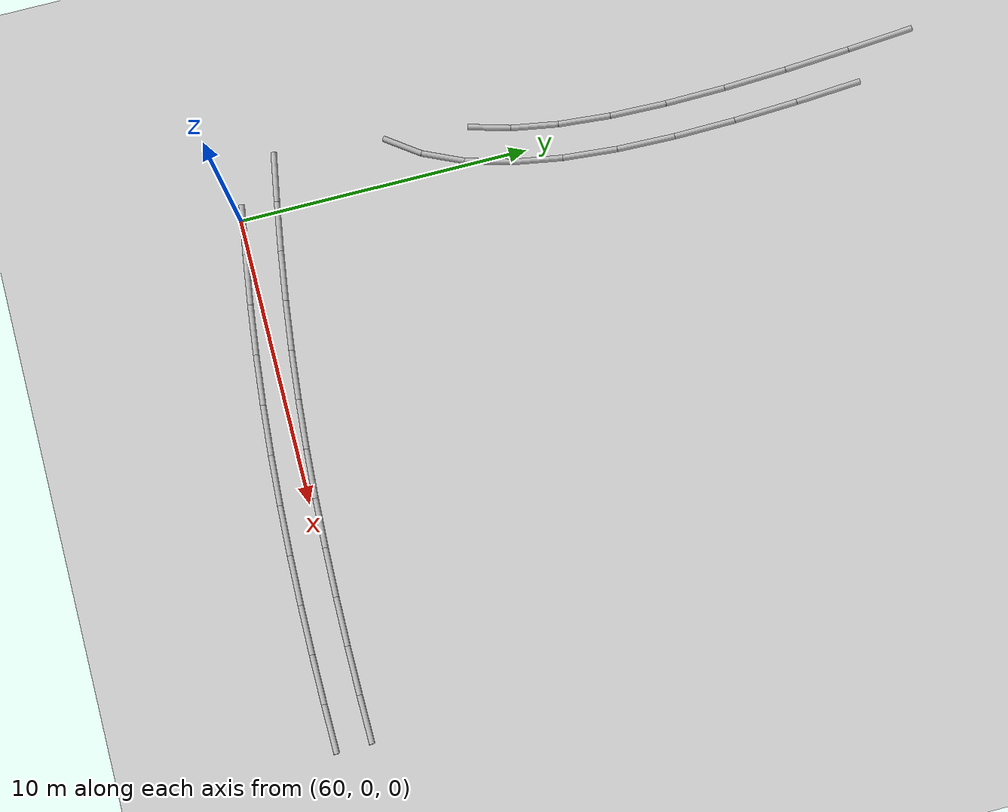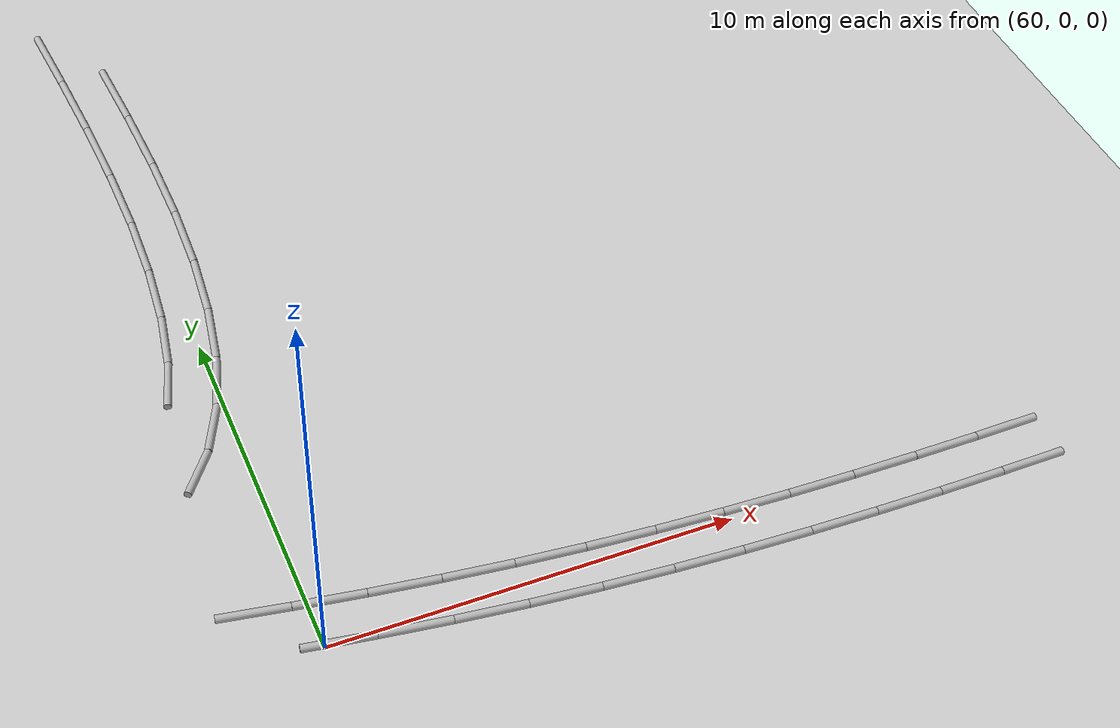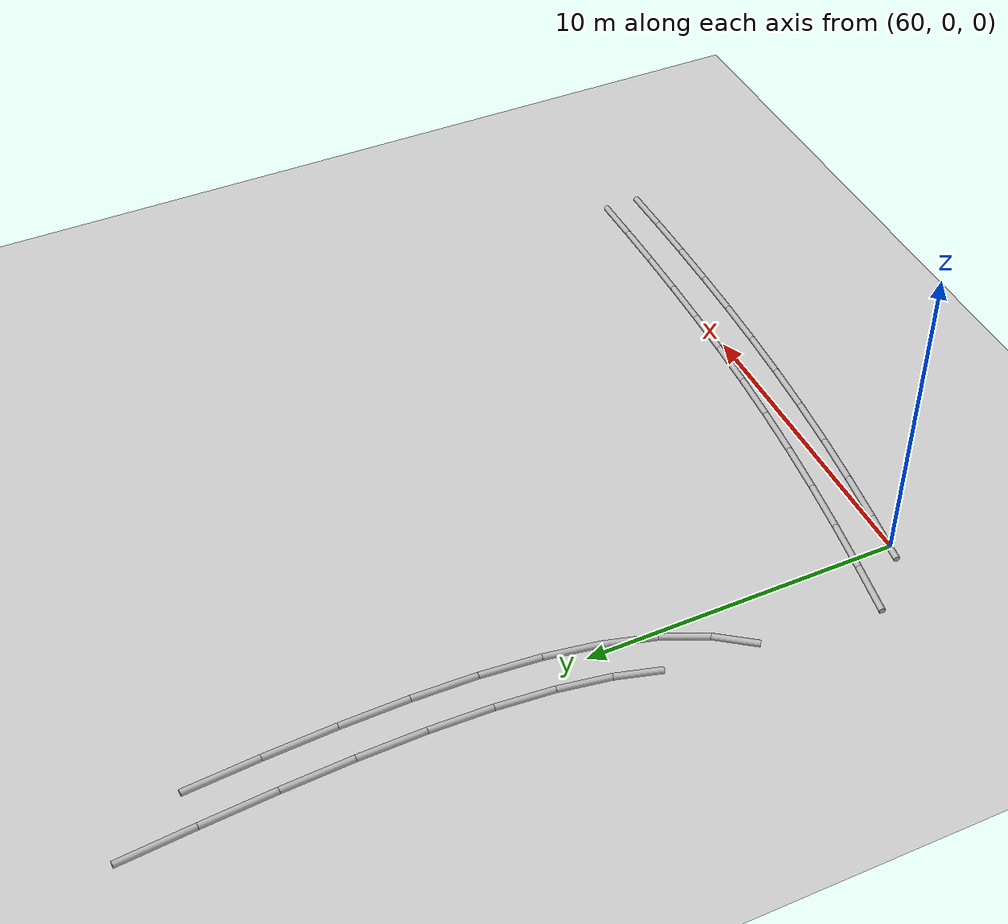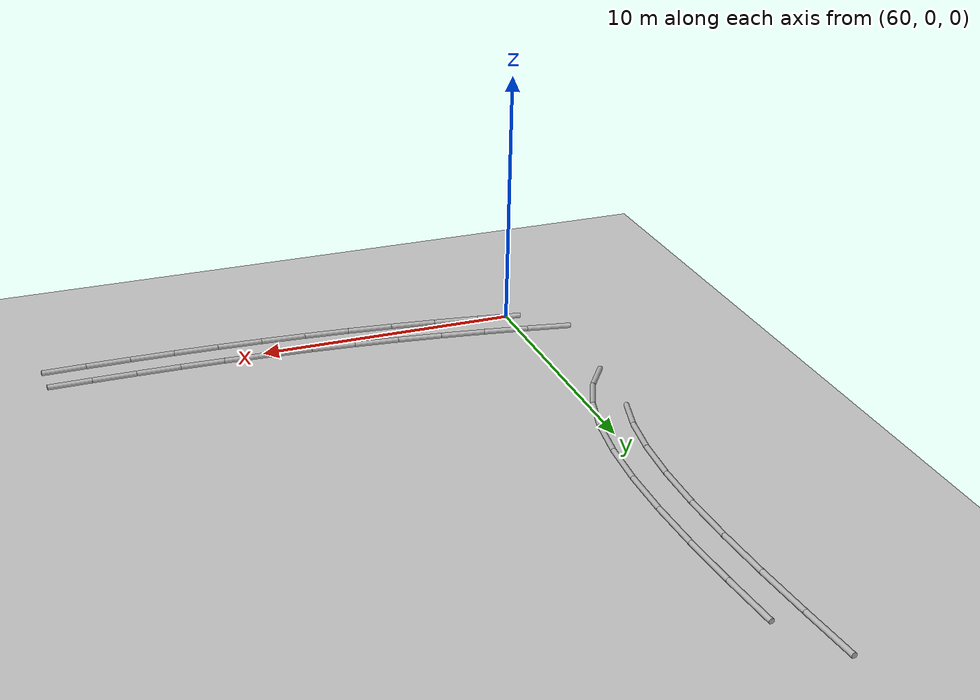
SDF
<sdf version="1.6">
 <world name="default">
  <model name="ground_plane">
   <static>true</static>
   <link name="link">
    <collision name="collision">
     <geometry><plane><normal>0 0 1</normal><size>5000 5000</size></plane></geometry>
     <surface>
      <friction>
       <ode><mu>50</mu></ode>
       <bullet><friction>1</friction><rolling_friction>0.1</rolling_friction></bullet>
      </friction>
     </surface>
    </collision>
    <visual name="visual">
     <geometry><plane><normal>0 0 1</normal><size>5000 5000</size></plane></geometry>
     <material>
      <ambient>0.8 0.8 0.8 1</ambient>
      <diffuse>0.8 0.8 0.8 1</diffuse>
      <specular>0.8 0.8 0.8 1</specular>
     </material>
    </visual>
    <inertial>
     <mass>1</mass>
     <inertia><ixx>1</ixx><ixy>0</ixy><ixz>0</ixz><iyy>1</iyy><iyz>0</iyz><izz>1</izz></inertia>
    </inertial>
   </link>
  </model>
  <model name="line_model">
   <static>true</static>
   <link name="cylinder_(59.4558746709025, 0.14785376078527576)_(61.18607336949037, -0.12121524587791974)">
    <pose>60.32097402019644 0.013319257453678013 0.05 0 1.5707963267948966 -0.15427757338818857</pose>
    <visual name="visual">
     <geometry><cylinder><radius>0.1</radius><length>1.7509956216227034</length></cylinder></geometry>
    </visual>
    <collision name="collision">
     <geometry><cylinder><radius>0.1</radius><length>1.7509956216227034</length></cylinder></geometry>
    </collision>
   </link>
   <link name="cylinder_(61.18607336949037, -0.12121524587791974)_(62.917348751878514, -0.36062326544347895)">
    <pose>62.05171106068444 -0.24091925566069933 0.05 0 1.5707963267948966 -0.137412723112346</pose>
    <visual name="visual">
     <geometry><cylinder><radius>0.1</radius><length>1.7477501679289025</length></cylinder></geometry>
    </visual>
    <collision name="collision">
     <geometry><cylinder><radius>0.1</radius><length>1.7477501679289025</length></cylinder></geometry>
    </collision>
   </link>
   <link name="cylinder_(62.917348751878514, -0.36062326544347895)_(64.6488298625912, -0.5660817327848389)">
    <pose>63.78308930723486 -0.4633524991141589 0.05 0 1.5707963267948966 -0.11810826268228325</pose>
    <visual name="visual">
     <geometry><cylinder><radius>0.1</radius><length>1.743628406099504</length></cylinder></geometry>
    </visual>
    <collision name="collision">
     <geometry><cylinder><radius>0.1</radius><length>1.743628406099504</length></cylinder></geometry>
    </collision>
   </link>
   <link name="cylinder_(64.6488298625912, -0.5660817327848389)_(66.37872384263247, -0.7339099857343313)">
    <pose>65.51377685261184 -0.6499958592595851 0.05 0 1.5707963267948966 -0.096713824203417</pose>
    <visual name="visual">
     <geometry><cylinder><radius>0.1</radius><length>1.7380159678987699</length></cylinder></geometry>
    </visual>
    <collision name="collision">
     <geometry><cylinder><radius>0.1</radius><length>1.7380159678987699</length></cylinder></geometry>
    </collision>
   </link>
   <link name="cylinder_(66.37872384263247, -0.7339099857343313)_(68.10414912517712, -0.8650764845923788)">
    <pose>67.24143648390479 -0.799493235163355 0.05 0 1.5707963267948966 -0.07587387399805764</pose>
    <visual name="visual">
     <geometry><cylinder><radius>0.1</radius><length>1.7304037263213918</length></cylinder></geometry>
    </visual>
    <collision name="collision">
     <geometry><cylinder><radius>0.1</radius><length>1.7304037263213918</length></cylinder></geometry>
    </collision>
   </link>
   <link name="cylinder_(68.10414912517712, -0.8650764845923788)_(69.82364428107424, -0.9626404442867024)">
    <pose>68.96389670312567 -0.9138584644395407 0.05 0 1.5707963267948966 -0.05667911393857689</pose>
    <visual name="visual">
     <geometry><cylinder><radius>0.1</radius><length>1.722260815725917</length></cylinder></geometry>
    </visual>
    <collision name="collision">
     <geometry><cylinder><radius>0.1</radius><length>1.722260815725917</length></cylinder></geometry>
    </collision>
   </link>
   <link name="cylinder_(69.82364428107424, -0.9626404442867024)_(71.53578515310383, -1.0296655577872333)">
    <pose>70.67971471708904 -0.9961530010369679 0.05 0 1.5707963267948966 -0.03912698290406215</pose>
    <visual name="visual">
     <geometry><cylinder><radius>0.1</radius><length>1.7134522845746287</length></cylinder></geometry>
    </visual>
    <collision name="collision">
     <geometry><cylinder><radius>0.1</radius><length>1.7134522845746287</length></cylinder></geometry>
    </collision>
   </link>
   <link name="cylinder_(71.53578515310383, -1.0296655577872333)_(73.23914906971584, -1.0692105656309485)">
    <pose>72.38746711140983 -1.049438061709091 0.05 0 1.5707963267948966 -0.02321166085968011</pose>
    <visual name="visual">
     <geometry><cylinder><radius>0.1</radius><length>1.7038228898747516</length></cylinder></geometry>
    </visual>
    <collision name="collision">
     <geometry><cylinder><radius>0.1</radius><length>1.7038228898747516</length></cylinder></geometry>
    </collision>
   </link>
   <link name="cylinder_(73.23914906971584, -1.0692105656309485)_(74.93231355480104, -1.0843292897933388)">
    <pose>74.08573131225845 -1.0767699277121436 0.05 0 1.5707963267948966 -0.00892903347550474</pose>
    <visual name="visual">
     <geometry><cylinder><radius>0.1</radius><length>1.6932319833307385</length></cylinder></geometry>
    </visual>
    <collision name="collision">
     <geometry><cylinder><radius>0.1</radius><length>1.6932319833307385</length></cylinder></geometry>
    </collision>
   </link>
   <link name="cylinder_(74.93231355480104, -1.0843292897933388)_(76.61385514079241, -1.078070735007637)">
    <pose>75.77308434779673 -1.081200012400488 0.05 0 1.5707963267948966 0.0037218977745712067</pose>
    <visual name="visual">
     <geometry><cylinder><radius>0.1</radius><length>1.6815532328553777</length></cylinder></geometry>
    </visual>
    <collision name="collision">
     <geometry><cylinder><radius>0.1</radius><length>1.6815532328553777</length></cylinder></geometry>
    </collision>
   </link>
   <link name="cylinder_(76.61385514079241, -1.078070735007637)_(78.28234827015892, -1.0534792192528566)">
    <pose>77.44810170547566 -1.0657749771302467 0.05 0 1.5707963267948966 0.014737690479147645</pose>
    <visual name="visual">
     <geometry><cylinder><radius>0.1</radius><length>1.6686743437202982</length></cylinder></geometry>
    </visual>
    <collision name="collision">
     <geometry><cylinder><radius>0.1</radius><length>1.6686743437202982</length></cylinder></geometry>
    </collision>
   </link>
   <link name="cylinder_(59.09466042212523, 23.903551695813437)_(59.28353773261314, 21.580530880459627)">
    <pose>59.189099077369185 22.742041288136534 0.05 0 1.5707963267948966 -1.48966802052077</pose>
    <visual name="visual">
     <geometry><cylinder><radius>0.1</radius><length>2.3306866685559067</length></cylinder></geometry>
    </visual>
    <collision name="collision">
     <geometry><cylinder><radius>0.1</radius><length>2.3306866685559067</length></cylinder></geometry>
    </collision>
   </link>
   <link name="cylinder_(59.28353773261314, 21.580530880459627)_(59.4432447249706, 19.301996181051596)">
    <pose>59.36339122879187 20.441263530755613 0.05 0 1.5707963267948966 -1.500818801336308</pose>
    <visual name="visual">
     <geometry><cylinder><radius>0.1</radius><length>2.2841249308683422</length></cylinder></geometry>
    </visual>
    <collision name="collision">
     <geometry><cylinder><radius>0.1</radius><length>2.2841249308683422</length></cylinder></geometry>
    </collision>
   </link>
   <link name="cylinder_(59.4432447249706, 19.301996181051596)_(59.548644525308916, 17.108503522713693)">
    <pose>59.49594462513976 18.205249851882645 0.05 0 1.5707963267948966 -1.5227821278218052</pose>
    <visual name="visual">
     <geometry><cylinder><radius>0.1</radius><length>2.1960234880559986</length></cylinder></geometry>
    </visual>
    <collision name="collision">
     <geometry><cylinder><radius>0.1</radius><length>2.1960234880559986</length></cylinder></geometry>
    </collision>
   </link>
   <link name="cylinder_(59.548644525308916, 17.108503522713693)_(59.582657306257076, 15.024302526809247)">
    <pose>59.565650915782996 16.06640302476147 0.05 0 1.5707963267948966 -1.5544784370806242</pose>
    <visual name="visual">
     <geometry><cylinder><radius>0.1</radius><length>2.0844785104665657</length></cylinder></geometry>
    </visual>
    <collision name="collision">
     <geometry><cylinder><radius>0.1</radius><length>2.0844785104665657</length></cylinder></geometry>
    </collision>
   </link>
   <link name="cylinder_(59.582657306257076, 15.024302526809247)_(59.5293341763339, 13.073169398239372)">
    <pose>59.55599574129549 14.04873596252431 0.05 0 1.5707963267948966 -1.598118839830791</pose>
    <visual name="visual">
     <geometry><cylinder><radius>0.1</radius><length>1.951861634847018</length></cylinder></geometry>
    </visual>
    <collision name="collision">
     <geometry><cylinder><radius>0.1</radius><length>1.951861634847018</length></cylinder></geometry>
    </collision>
   </link>
   <link name="cylinder_(59.5293341763339, 13.073169398239372)_(59.37349944024506, 11.279682886447496)">
    <pose>59.45141680828948 12.176426142343434 0.05 0 1.5707963267948966 -1.657467919334233</pose>
    <visual name="visual">
     <geometry><cylinder><radius>0.1</radius><length>1.80024396484234</length></cylinder></geometry>
    </visual>
    <collision name="collision">
     <geometry><cylinder><radius>0.1</radius><length>1.80024396484234</length></cylinder></geometry>
    </collision>
   </link>
   <link name="cylinder_(59.37349944024506, 11.279682886447496)_(59.10150235394358, 9.66936378566929)">
    <pose>59.23750089709432 10.474523336058393 0.05 0 1.5707963267948966 -1.7381257546896183</pose>
    <visual name="visual">
     <geometry><cylinder><radius>0.1</radius><length>1.633128905288136</length></cylinder></geometry>
    </visual>
    <collision name="collision">
     <geometry><cylinder><radius>0.1</radius><length>1.633128905288136</length></cylinder></geometry>
    </collision>
   </link>
   <link name="cylinder_(59.10150235394358, 9.66936378566929)_(58.70257410059047, 8.26828628424899)">
    <pose>58.90203822726703 8.96882503495914 0.05 0 1.5707963267948966 -1.8481853904811099</pose>
    <visual name="visual">
     <geometry><cylinder><radius>0.1</radius><length>1.4567641937903044</length></cylinder></geometry>
    </visual>
    <collision name="collision">
     <geometry><cylinder><radius>0.1</radius><length>1.4567641937903044</length></cylinder></geometry>
    </collision>
   </link>
   <link name="cylinder_(57.93680675877189, 1.6239350068469)_(59.649317722062996, 1.3321593741966609)">
    <pose>58.79306224041744 1.4780471905217805 0.05 0 1.5707963267948966 -0.16875833383506253</pose>
    <visual name="visual">
     <geometry><cylinder><radius>0.1</radius><length>1.7371893446601292</length></cylinder></geometry>
    </visual>
    <collision name="collision">
     <geometry><cylinder><radius>0.1</radius><length>1.7371893446601292</length></cylinder></geometry>
    </collision>
   </link>
   <link name="cylinder_(59.649317722062996, 1.3321593741966609)_(61.36094187157964, 1.0659751377493447)">
    <pose>60.50512979682132 1.1990672559730027 0.05 0 1.5707963267948966 -0.15427975262923488</pose>
    <visual name="visual">
     <geometry><cylinder><radius>0.1</radius><length>1.7321983942209447</length></cylinder></geometry>
    </visual>
    <collision name="collision">
     <geometry><cylinder><radius>0.1</radius><length>1.7321983942209447</length></cylinder></geometry>
    </collision>
   </link>
   <link name="cylinder_(61.36094187157964, 1.0659751377493447)_(63.07072960419036, 0.8295339990153364)">
    <pose>62.215835737885 0.9477545683823405 0.05 0 1.5707963267948966 -0.13741531796170678</pose>
    <visual name="visual">
     <geometry><cylinder><radius>0.1</radius><length>1.7260586614225906</length></cylinder></geometry>
    </visual>
    <collision name="collision">
     <geometry><cylinder><radius>0.1</radius><length>1.7260586614225906</length></cylinder></geometry>
    </collision>
   </link>
   <link name="cylinder_(63.07072960419036, 0.8295339990153364)_(64.77772900791695, 0.626975269346364)">
    <pose>63.924229306053654 0.7282546341808502 0.05 0 1.5707963267948966 -0.11811130980060718</pose>
    <visual name="visual">
     <geometry><cylinder><radius>0.1</radius><length>1.718975567972978</length></cylinder></geometry>
    </visual>
    <collision name="collision">
     <geometry><cylinder><radius>0.1</radius><length>1.718975567972978</length></cylinder></geometry>
    </collision>
   </link>
   <link name="cylinder_(64.77772900791695, 0.626975269346364)_(66.48181185793989, 0.46165383987264164)">
    <pose>65.62977043292841 0.5443145546095028 0.05 0 1.5707963267948966 -0.09671224403892549</pose>
    <visual name="visual">
     <geometry><cylinder><radius>0.1</radius><length>1.7120833901377435</length></cylinder></geometry>
    </visual>
    <collision name="collision">
     <geometry><cylinder><radius>0.1</radius><length>1.7120833901377435</length></cylinder></geometry>
    </collision>
   </link>
   <link name="cylinder_(66.48181185793989, 0.46165383987264164)_(68.18328525235016, 0.33231128608846927)">
    <pose>67.33254855514502 0.39698256298055545 0.05 0 1.5707963267948966 -0.07587204666007749</pose>
    <visual name="visual">
     <geometry><cylinder><radius>0.1</radius><length>1.7063824917366632</length></cylinder></geometry>
    </visual>
    <collision name="collision">
     <geometry><cylinder><radius>0.1</radius><length>1.7063824917366632</length></cylinder></geometry>
    </collision>
   </link>
   <link name="cylinder_(68.18328525235016, 0.33231128608846927)_(69.88076944490669, 0.23599908270092135)">
    <pose>69.03202734862842 0.28415518439469534 0.05 0 1.5707963267948966 -0.05667743640808352</pose>
    <visual name="visual">
     <geometry><cylinder><radius>0.1</radius><length>1.700214287818056</length></cylinder></geometry>
    </visual>
    <collision name="collision">
     <geometry><cylinder><radius>0.1</radius><length>1.700214287818056</length></cylinder></geometry>
    </collision>
   </link>
   <link name="cylinder_(69.88076944490669, 0.23599908270092135)_(71.57284662804406, 0.16976199195274838)">
    <pose>70.72680803647538 0.20288053732683486 0.05 0 1.5707963267948966 -0.03912545441339115</pose>
    <visual name="visual">
     <geometry><cylinder><radius>0.1</radius><length>1.6933731265981762</length></cylinder></geometry>
    </visual>
    <collision name="collision">
     <geometry><cylinder><radius>0.1</radius><length>1.6933731265981762</length></cylinder></geometry>
    </collision>
   </link>
   <link name="cylinder_(71.57284662804406, 0.16976199195274838)_(73.25809750852684, 0.13063982365374277)">
    <pose>72.41547206828545 0.15020090780324558 0.05 0 1.5707963267948966 -0.023210278801862216</pose>
    <visual name="visual">
     <geometry><cylinder><radius>0.1</radius><length>1.6857049190829374</length></cylinder></geometry>
    </visual>
    <collision name="collision">
     <geometry><cylinder><radius>0.1</radius><length>1.6857049190829374</length></cylinder></geometry>
    </collision>
   </link>
   <link name="cylinder_(73.25809750852684, 0.13063982365374277)_(74.93510259767893, 0.1156674690522114)">
    <pose>74.09660005310289 0.12315364635297708 0.05 0 1.5707963267948966 -0.008927794496981268</pose>
    <visual name="visual">
     <geometry><cylinder><radius>0.1</radius><length>1.677071924648529</length></cylinder></geometry>
    </visual>
    <collision name="collision">
     <geometry><cylinder><radius>0.1</radius><length>1.677071924648529</length></cylinder></geometry>
    </collision>
   </link>
   <link name="cylinder_(74.93510259767893, 0.1156674690522114)_(76.60244339828185, 0.1218750021542034)">
    <pose>75.76877299798039 0.1187712356032074 0.05 0 1.5707963267948966 0.00372299677394039</pose>
    <visual name="visual">
     <geometry><cylinder><radius>0.1</radius><length>1.6673523559291183</length></cylinder></geometry>
    </visual>
    <collision name="collision">
     <geometry><cylinder><radius>0.1</radius><length>1.6673523559291183</length></cylinder></geometry>
    </collision>
   </link>
   <link name="cylinder_(76.60244339828185, 0.1218750021542034)_(78.25870350308121, 0.14628781021154805)">
    <pose>77.43057345068152 0.13408140618287573 0.05 0 1.5707963267948966 0.014738651403310292</pose>
    <visual name="visual">
     <geometry><cylinder><radius>0.1</radius><length>1.6564400139900102</length></cylinder></geometry>
    </visual>
    <collision name="collision">
     <geometry><cylinder><radius>0.1</radius><length>1.6564400139900102</length></cylinder></geometry>
    </collision>
   </link>
   <link name="cylinder_(60.47993901660912, 21.673396200427725)_(60.64105055748412, 19.374530225448705)">
    <pose>60.56049478704662 20.523963212938213 0.05 0 1.5707963267948966 -1.5008276798169424</pose>
    <visual name="visual">
     <geometry><cylinder><radius>0.1</radius><length>2.304504653828964</length></cylinder></geometry>
    </visual>
    <collision name="collision">
     <geometry><cylinder><radius>0.1</radius><length>2.304504653828964</length></cylinder></geometry>
    </collision>
   </link>
   <link name="cylinder_(60.64105055748412, 19.374530225448705)_(60.74796001373814, 17.149029554024587)">
    <pose>60.69450528561113 18.261779889736644 0.05 0 1.5707963267948966 -1.5227948440388235</pose>
    <visual name="visual">
     <geometry><cylinder><radius>0.1</radius><length>2.228067070432515</length></cylinder></geometry>
    </visual>
    <collision name="collision">
     <geometry><cylinder><radius>0.1</radius><length>2.228067070432515</length></cylinder></geometry>
    </collision>
   </link>
   <link name="cylinder_(60.74796001373814, 17.149029554024587)_(60.78265002200237, 15.020121359721184)">
    <pose>60.765305017870254 16.084575456872884 0.05 0 1.5707963267948966 -1.5545030274570715</pose>
    <visual name="visual">
     <geometry><cylinder><radius>0.1</radius><length>2.1291908078999278</length></cylinder></geometry>
    </visual>
    <collision name="collision">
     <geometry><cylinder><radius>0.1</radius><length>2.1291908078999278</length></cylinder></geometry>
    </collision>
   </link>
   <link name="cylinder_(60.78265002200237, 15.020121359721184)_(60.72756032735138, 13.00794600506003)">
    <pose>60.75510517467687 14.014033682390608 0.05 0 1.5707963267948966 -1.59816766711164</pose>
    <visual name="visual">
     <geometry><cylinder><radius>0.1</radius><length>2.012929341125138</length></cylinder></geometry>
    </visual>
    <collision name="collision">
     <geometry><cylinder><radius>0.1</radius><length>2.012929341125138</length></cylinder></geometry>
    </collision>
   </link>
   <link name="cylinder_(60.72756032735138, 13.00794600506003)_(60.5643574786729, 11.131841308020345)">
    <pose>60.64595890301214 12.069893656540188 0.05 0 1.5707963267948966 -1.6575681574727115</pose>
    <visual name="visual">
     <geometry><cylinder><radius>0.1</radius><length>1.8831898481223646</length></cylinder></geometry>
    </visual>
    <collision name="collision">
     <geometry><cylinder><radius>0.1</radius><length>1.8831898481223646</length></cylinder></geometry>
    </collision>
   </link>
   <link name="cylinder_(60.5643574786729, 11.131841308020345)_(60.27318307360722, 9.410203041789128)">
    <pose>60.418770276140066 10.271022174904736 0.05 0 1.5707963267948966 -1.7383372559860781</pose>
    <visual name="visual">
     <geometry><cylinder><radius>0.1</radius><length>1.7460872984810882</length></cylinder></geometry>
    </visual>
    <collision name="collision">
     <geometry><cylinder><radius>0.1</radius><length>1.7460872984810882</length></cylinder></geometry>
    </collision>
   </link>
   <link name="cylinder_(60.27318307360722, 9.410203041789128)_(59.83129678258685, 7.860873585444783)">
    <pose>60.05223992809704 8.635538313616955 0.05 0 1.5707963267948966 -1.8486309130302916</pose>
    <visual name="visual">
     <geometry><cylinder><radius>0.1</radius><length>1.6111130495679085</length></cylinder></geometry>
    </visual>
    <collision name="collision">
     <geometry><cylinder><radius>0.1</radius><length>1.6111130495679085</length></cylinder></geometry>
    </collision>
   </link>
   <link name="cylinder_(59.83129678258685, 7.860873585444783)_(59.211329494463186, 6.503433973065187)">
    <pose>59.52131313852502 7.182153779254985 0.05 0 1.5707963267948966 -1.9992229915204445</pose>
    <visual name="visual">
     <geometry><cylinder><radius>0.1</radius><length>1.4923142228098862</length></cylinder></geometry>
    </visual>
    <collision name="collision">
     <geometry><cylinder><radius>0.1</radius><length>1.4923142228098862</length></cylinder></geometry>
    </collision>
   </link>
   <link name="cylinder_(59.211329494463186, 6.503433973065187)_(58.38195996262169, 5.365679997510485)">
    <pose>58.79664472854244 5.934556985287836 0.05 0 1.5707963267948966 -2.200690929805517</pose>
    <visual name="visual">
     <geometry><cylinder><radius>0.1</radius><length>1.407955229841314</length></cylinder></geometry>
    </visual>
    <collision name="collision">
     <geometry><cylinder><radius>0.1</radius><length>1.407955229841314</length></cylinder></geometry>
    </collision>
   </link>
  </model>
 </world>
</sdf>
